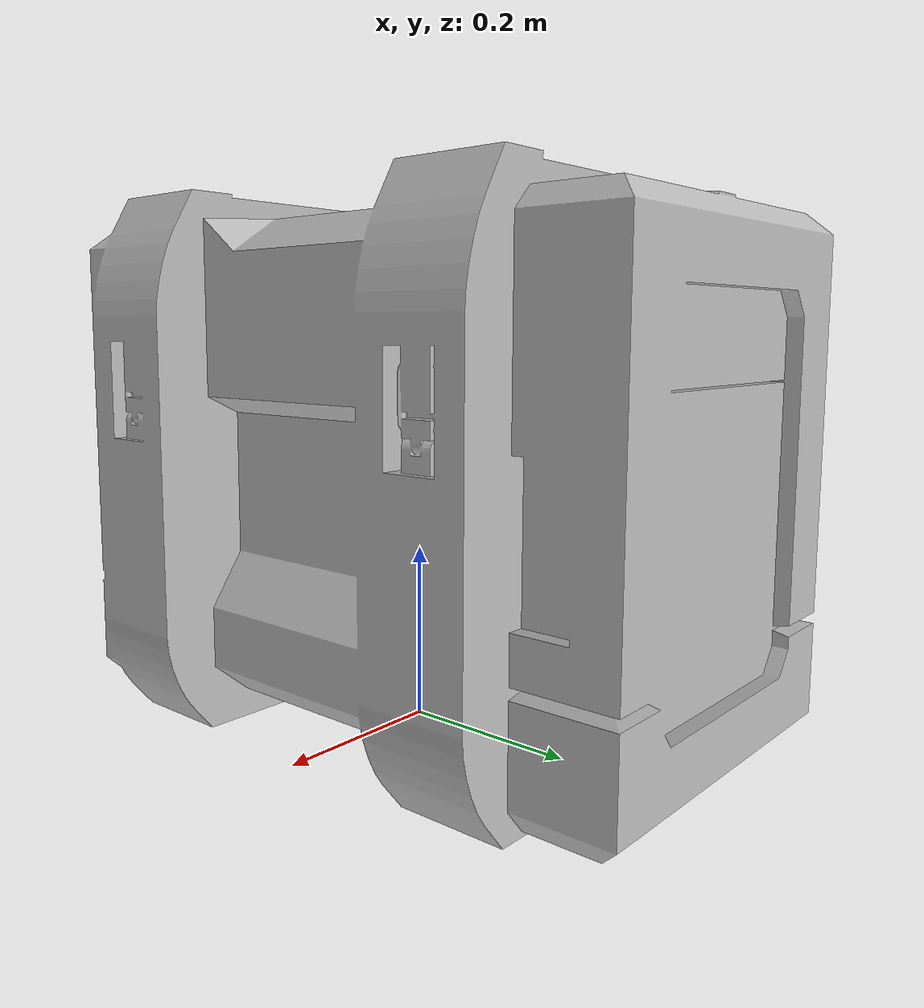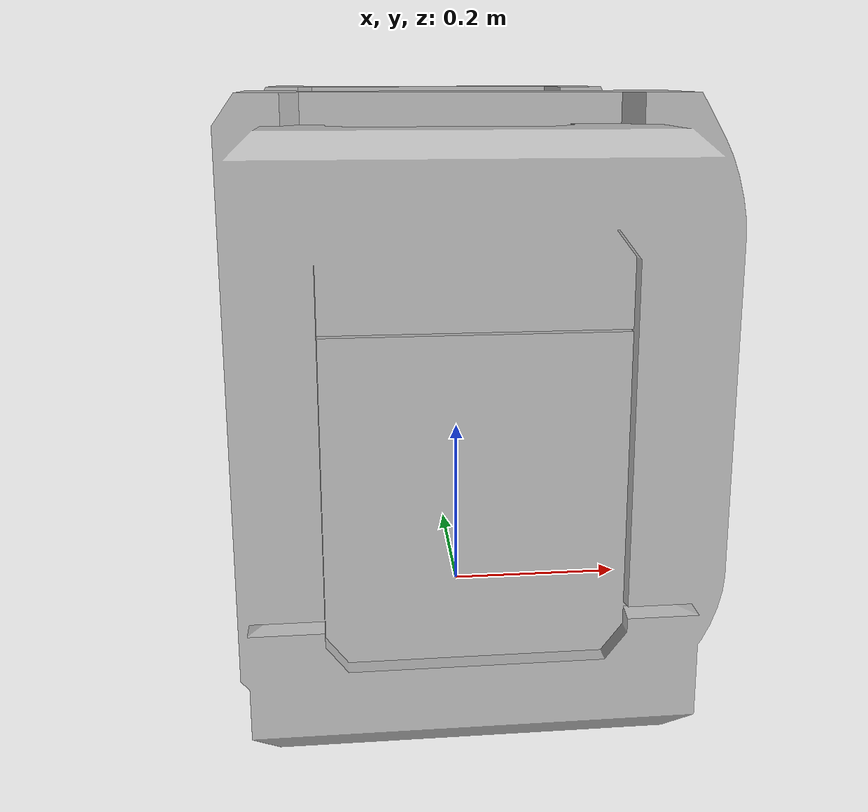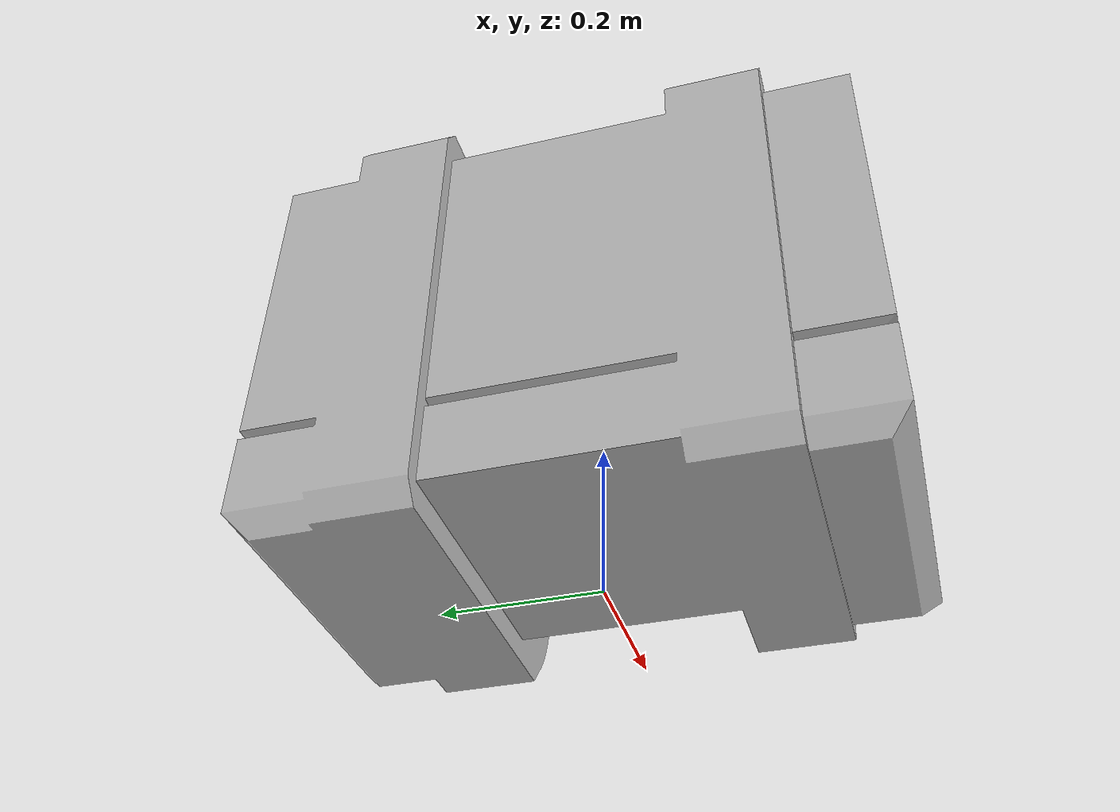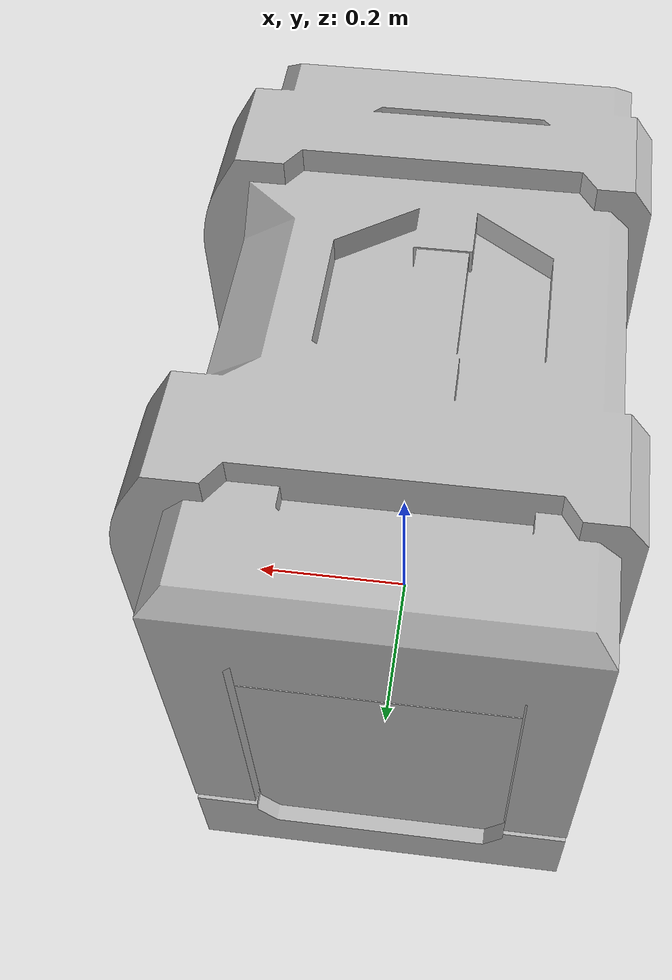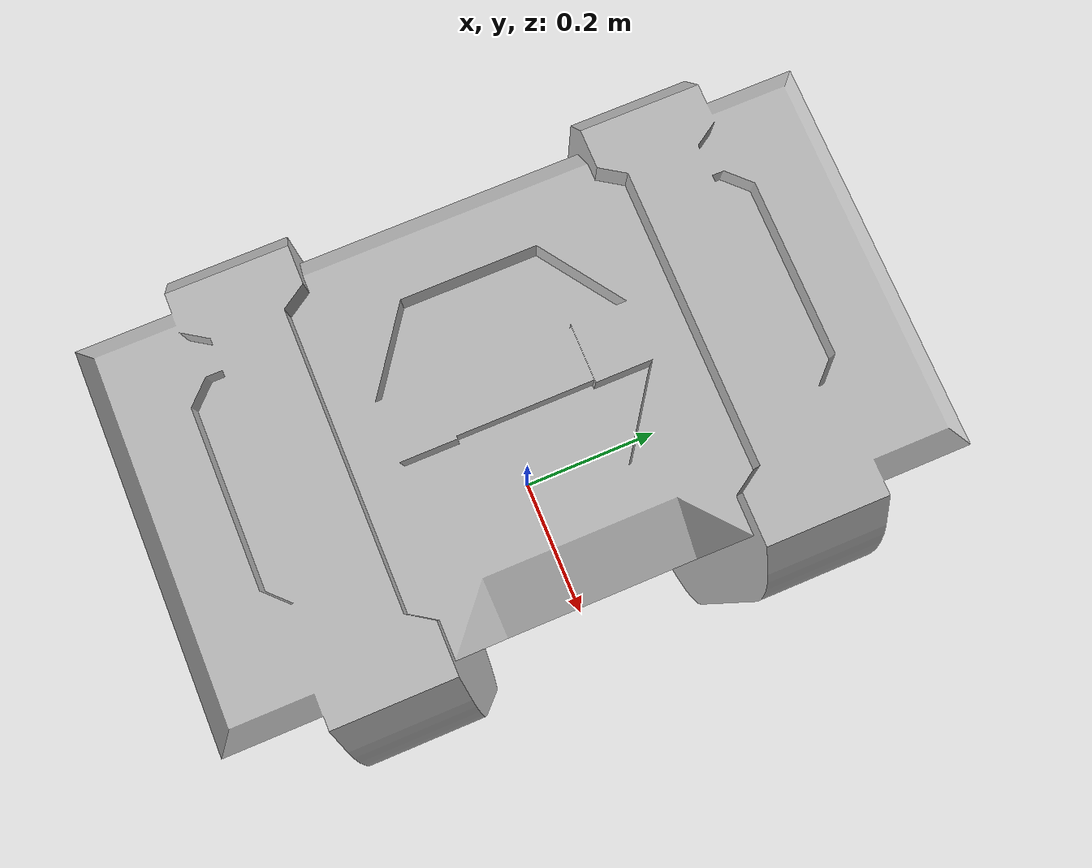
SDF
<?xml version="1.0" ?>
<sdf version='1.4'>
  <model name="crate_waste">
      <static>1</static>
        <link name='link_1'>
            <visual name='visual'>
            <pose frame=''>0 0 0 0 0 0</pose>
            <geometry>
            <mesh>
                <uri>model://crate_waste/meshes/crate.dae</uri>
                <scale>2.0 2.0 2.0</scale>
            </mesh>
            </geometry>
            <cast_shadows>0</cast_shadows>
            <transparency>0</transparency>
        </visual>

        <collision name='collision'>
            <laser_retro>0</laser_retro>
            <pose frame=''>0 0 0 0 0 0</pose>
            <geometry>
            <mesh>
                <uri>model://crate_waste/meshes/crate.stl</uri>
                <scale>2.0 2.0 2.0</scale>
            </mesh>
            </geometry>
        </collision>
        </link>
  </model>
</sdf>
